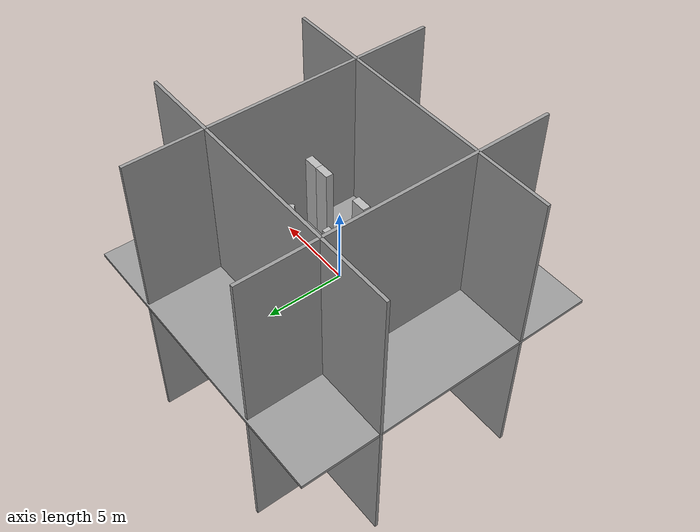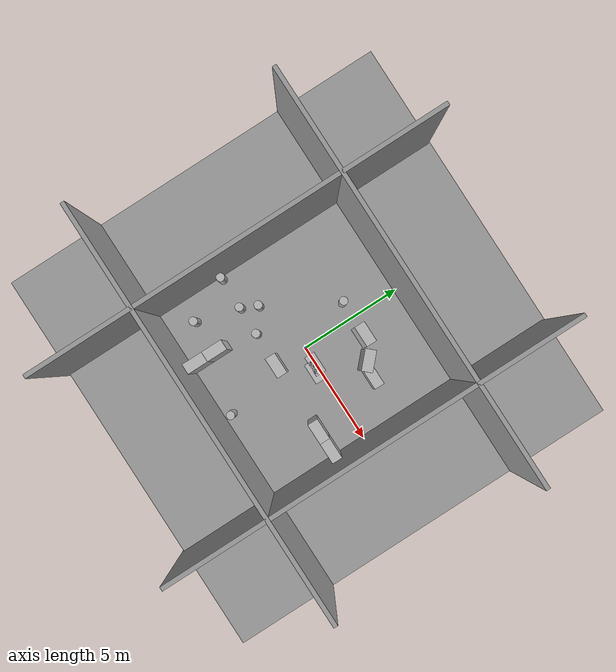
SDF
<sdf version="1.4">
 <world name="default">
  <plugin name="ros_interface_plugin" filename="librotors_gazebo_ros_interface_plugin.so"/>
  <spherical_coordinates>
   <surface_model>EARTH_WGS84</surface_model>
   <latitude_deg>47.3667</latitude_deg>
   <longitude_deg>8.5500</longitude_deg>
   <elevation>500.0</elevation>
   <heading_deg>0</heading_deg>
  </spherical_coordinates>
  <physics type="ode">
   <ode>
    <solver><type>quick</type><iters>1000</iters><sor>1.3</sor></solver>
    <constraints>
     <cfm>0</cfm>
     <erp>0.2</erp>
     <contact_max_correcting_vel>100</contact_max_correcting_vel>
     <contact_surface_layer>0.001</contact_surface_layer>
    </constraints>
   </ode>
   <max_step_size>0.01</max_step_size>
   <real_time_factor>1</real_time_factor>
   <real_time_update_rate>100</real_time_update_rate>
   <gravity>0 0 -9.8</gravity>
  </physics>
  <light type="directional" name="sun1">
   <pose>50 0 150 0 0 0</pose>
   <diffuse>1 1 1 1</diffuse>
   <specular>.1 .1 .1 1</specular>
   <direction>0.3 0.3 -1</direction>
   <cast_shadows>false</cast_shadows>
  </light>
  <light type="directional" name="sun_diffuse">
   <pose>-50 0 -150 0 0 0</pose>
   <diffuse>0.6 0.6 0.6 1</diffuse>
   <specular>0 0 0 1</specular>
   <direction>-0.3 -0.3 -1</direction>
   <cast_shadows>false</cast_shadows>
  </light>
  <scene>
   <ambient>0.01 0.01 0.01 1.0</ambient>
   <sky><clouds><speed>12</speed></clouds></sky>
   <shadows>1</shadows>
   <fog>
    <color>0.1 0.2 0.3 1.0</color>
    <type>linear</type>
    <density>0.1</density>
    <start>10</start>
    <end>40</end>
   </fog>
  </scene>
  <include><uri>model://grey_wall</uri><pose>0 -5.0 -1.0 0 0 0</pose><name>grey_wall_0</name></include>
  <include><uri>model://grey_wall</uri><pose>0 5.0 -1.0 0 0 0</pose><name>grey_wall_1</name></include>
  <include>
   <uri>model://grey_wall</uri>
   <pose>-5.0 0.0 -1.0 0 0 1.57079632679</pose>
   <name>grey_wall_2</name>
  </include>
  <include>
   <uri>model://grey_wall</uri>
   <pose>5.0 0.0 -1.0 0 0 1.57079632679</pose>
   <name>grey_wall_3</name>
  </include>
  <include>
   <uri>model://grey_wall</uri>
   <pose>0.0 1.5 -0.1 1.57079632679 0 0</pose>
   <name>grey_wall_4</name>
  </include>
  <include><uri>model://obstacle_2</uri><pose>-2.0 -4.4 2.5 0.0 0 1.57</pose><name>obstacle_1</name></include>
  <include><uri>model://obstacle_2</uri><pose>-2.0 -3.4 2.5 0.0 0 1.57</pose><name>obstacle_2</name></include>
  <include><uri>model://obstacle_2</uri><pose>4.4 -1.5 2.5 0.0 0 0</pose><name>obstacle_3</name></include>
  <include><uri>model://obstacle_2</uri><pose>3.4 -1.5 2.5 0.0 0 0</pose><name>obstacle_4</name></include>
  <include><uri>model://obstacle_2</uri><pose>0.0 -1.5 2.5 0.0 0 0</pose><name>obstacle_5</name></include>
  <include><uri>model://obstacle_2</uri><pose>2.0 2.0 2.5 0.0 0 -0.75</pose><name>obstacle_6</name></include>
  <include><uri>model://obstacle_2</uri><pose>0.95 2.5 2.5 0.0 0 0.0</pose><name>obstacle_7</name></include>
  <model name="obstacle_4_0">
   <static>1</static>
   <link name="link">
    <collision name="collision">
     <geometry><cylinder><radius>0.2</radius><length>5</length></cylinder></geometry>
    </collision>
    <visual name="visual">
     <geometry><cylinder><radius>0.2</radius><length>5</length></cylinder></geometry>
    </visual>
   </link>
   <pose>-1.73176 -1.53062 0 0 -0 0</pose>
  </model>
  <model name="obstacle_4_1">
   <static>1</static>
   <link name="link">
    <collision name="collision">
     <geometry><cylinder><radius>0.2</radius><length>5</length></cylinder></geometry>
    </collision>
    <visual name="visual">
     <geometry><cylinder><radius>0.2</radius><length>5</length></cylinder></geometry>
    </visual>
   </link>
   <pose>-4.72813 -1.49986 0 0 -0 0</pose>
  </model>
  <model name="obstacle_4_2">
   <static>1</static>
   <link name="link">
    <collision name="collision">
     <geometry><cylinder><radius>0.2</radius><length>5</length></cylinder></geometry>
    </collision>
    <visual name="visual">
     <geometry><cylinder><radius>0.2</radius><length>5</length></cylinder></geometry>
    </visual>
   </link>
   <pose>-3.13681 -1.51344 0 0 -0 0</pose>
  </model>
  <model name="obstacle_2_0">
   <static>1</static>
   <link name="link">
    <collision name="collision"><geometry><box><size>1 0.5 5</size></box></geometry></collision>
    <visual name="visual"><geometry><box><size>1 0.5 5</size></box></geometry></visual>
   </link>
   <pose>0.879406 -0.036052 0 0 -0 0</pose>
  </model>
  <model name="obstacle_2_1">
   <static>1</static>
   <link name="link">
    <collision name="collision"><geometry><box><size>1 0.5 5</size></box></geometry></collision>
    <visual name="visual"><geometry><box><size>1 0.5 5</size></box></geometry></visual>
   </link>
   <pose>1.16617 -0.233991 0 0 -0 0</pose>
  </model>
  <model name="obstacle_4_3">
   <static>1</static>
   <link name="link">
    <collision name="collision">
     <geometry><cylinder><radius>0.2</radius><length>5</length></cylinder></geometry>
    </collision>
    <visual name="visual">
     <geometry><cylinder><radius>0.2</radius><length>5</length></cylinder></geometry>
    </visual>
   </link>
   <pose>-2.75586 -0.746236 0 0 -0 0</pose>
  </model>
  <model name="obstacle_4_4">
   <static>1</static>
   <link name="link">
    <collision name="collision">
     <geometry><cylinder><radius>0.2</radius><length>5</length></cylinder></geometry>
    </collision>
    <visual name="visual">
     <geometry><cylinder><radius>0.2</radius><length>5</length></cylinder></geometry>
    </visual>
   </link>
   <pose>0.750147 -4.48468 0 0 -0 0</pose>
  </model>
  <model name="obstacle_4_5">
   <static>1</static>
   <link name="link">
    <collision name="collision">
     <geometry><cylinder><radius>0.2</radius><length>5</length></cylinder></geometry>
    </collision>
    <visual name="visual">
     <geometry><cylinder><radius>0.2</radius><length>5</length></cylinder></geometry>
    </visual>
   </link>
   <pose>-0.820132 2.58969 0 0 -0 0</pose>
  </model>
  <model name="obstacle_2_2">
   <static>1</static>
   <link name="link">
    <collision name="collision"><geometry><box><size>0.999999 0.500001 5</size></box></geometry></collision>
    <visual name="visual"><geometry><box><size>0.999999 0.500001 5</size></box></geometry></visual>
   </link>
   <pose>2.7946 1.85726 0 0 -0 0</pose>
  </model>
  <model name="obstacle_9">
   <static>0</static>
   <link name="link">
    <collision name="collision">
     <geometry><cylinder><radius>0.2</radius><length>5</length></cylinder></geometry>
    </collision>
    <visual name="visual">
     <geometry><cylinder><radius>0.2</radius><length>5</length></cylinder></geometry>
    </visual>
    <inertial>
     <inertia><ixx>1</ixx><ixy>0</ixy><ixz>0</ixz><iyy>1</iyy><iyz>0</iyz><izz>1</izz></inertia>
     <mass>1</mass>
    </inertial>
   </link>
   <pose>-3.72663 -3.59806 0 0 -0 0</pose>
  </model>
  <plugin name="underwater_current_plugin" filename="libuuv_underwater_current_ros_plugin.so">
   <namespace>hydrodynamics</namespace>
   <constant_current>
    <topic>current_velocity</topic>
    <velocity><mean>0</mean><min>0</min><max>5</max><mu>0.0</mu><noiseAmp>0.0</noiseAmp></velocity>
    <horizontal_angle>
     <mean>0</mean>
     <min>-3.141592653589793238</min>
     <max>3.141592653589793238</max>
     <mu>0.0</mu>
     <noiseAmp>0.0</noiseAmp>
    </horizontal_angle>
    <vertical_angle>
     <mean>0</mean>
     <min>-3.141592653589793238</min>
     <max>3.141592653589793238</max>
     <mu>0.0</mu>
     <noiseAmp>0.0</noiseAmp>
    </vertical_angle>
   </constant_current>
  </plugin>
  <plugin name="sc_interface" filename="libuuv_sc_ros_interface_plugin.so"/>
 </world>
</sdf>

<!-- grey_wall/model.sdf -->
<sdf version="1.5">
  <model name="grey_wall">
    <static>true</static>
    <link name="link">
      <pose>0 0 1.4 0 0 0</pose>
      <collision name="collision">
        <geometry>
          <box>
            <size>20.0 0.2 20.0</size>
          </box>
        </geometry>
      </collision>
      <visual name="visual">
        <cast_shadows>false</cast_shadows>
        <geometry>
          <box>
            <size>20.0 0.2 20.0</size>
          </box>
        </geometry>
        <material>
          <script>
            <uri>model://grey_wall/materials/scripts</uri>
            <uri>model://grey_wall/materials/textures</uri>
            <name>vrc/grey_wall</name>
          </script>
        </material>
      </visual>
    </link>
  </model>
</sdf>

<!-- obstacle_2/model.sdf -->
<sdf version="1.5">
  <model name="obstacle_2">
    <static>false</static>
    <link name="link">
      <pose>0 0 0 0 0 0</pose>
      <collision name="collision">
        <geometry>
          <box>
            <size>1.0 0.5 5.0</size>
          </box>
        </geometry>
      </collision>
      <visual name="visual">
        <geometry>
          <box>
            <size>1.0 0.5 5.0</size>
          </box>
        </geometry>
      </visual>
    </link>
  </model>
</sdf>
